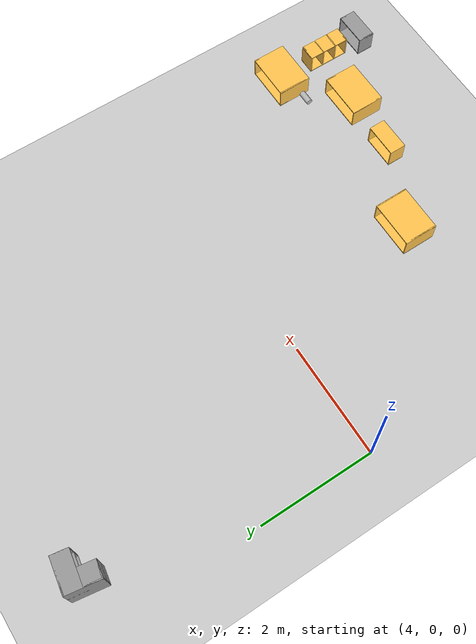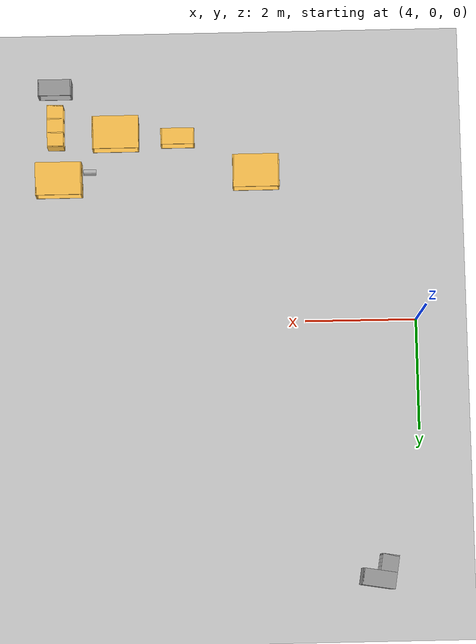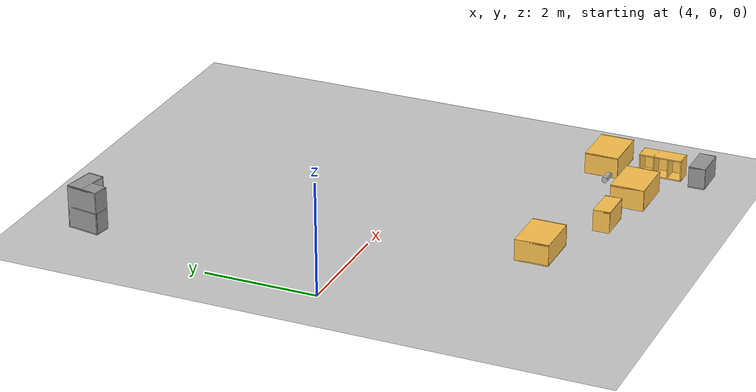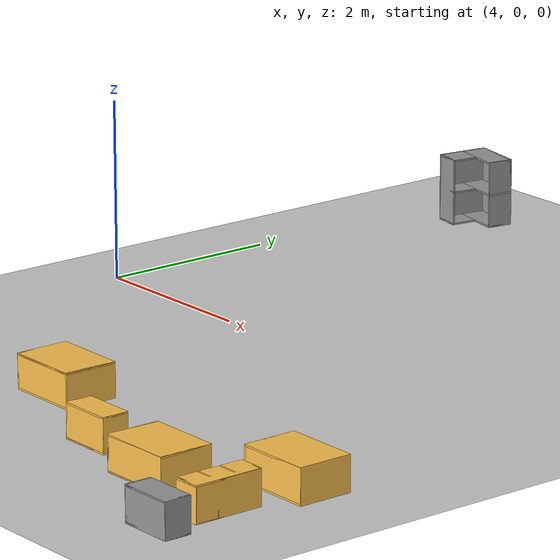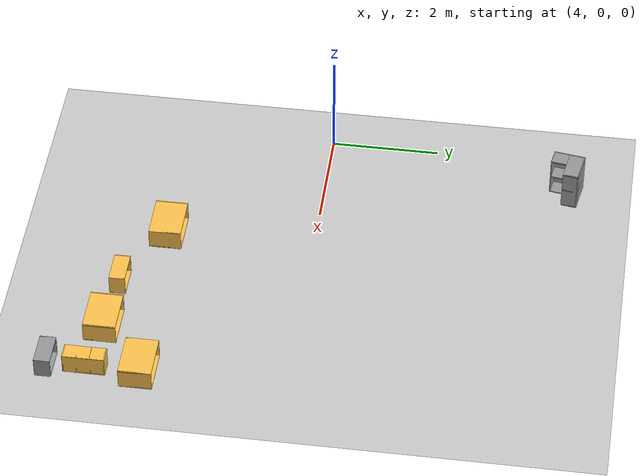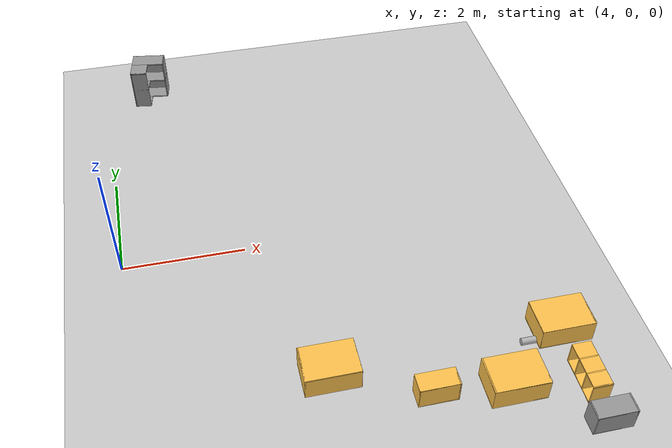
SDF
<sdf version="1.7">
 <world name="default">
  <model name="ground_plane">
   <static>1</static>
   <link name="link">
    <collision name="collision">
     <geometry><plane><normal>0 0 1</normal><size>100 100</size></plane></geometry>
     <surface>
      <contact><collide_bitmask>65535</collide_bitmask></contact>
      <friction><ode><mu>100</mu><mu2>50</mu2></ode></friction>
     </surface>
    </collision>
    <visual name="visual">
     <cast_shadows>0</cast_shadows>
     <geometry><plane><normal>0 0 1</normal><size>100 100</size></plane></geometry>
     <material>
      <script><uri>file://media/materials/scripts/gazebo.material</uri><name>Gazebo/Grey</name></script>
     </material>
    </visual>
   </link>
  </model>
  <model name="beer">
   <link name="link">
    <pose>0 0 0.115 0 -0 0</pose>
    <inertial>
     <mass>0.39</mass>
     <inertia><ixx>0.00058</ixx><ixy>0</ixy><ixz>0</ixz><iyy>0.00058</iyy><iyz>0</iyz><izz>0.00019</izz></inertia>
    </inertial>
    <collision name="collision">
     <geometry><cylinder><radius>0.055</radius><length>0.23</length></cylinder></geometry>
    </collision>
    <visual name="visual">
     <geometry><cylinder><radius>0.055</radius><length>0.23</length></cylinder></geometry>
     <material>
      <script>
       <uri>model://beer/materials/scripts</uri>
       <uri>model://beer/materials/textures</uri>
       <name>Beer/Diffuse</name>
      </script>
     </material>
    </visual>
   </link>
   <pose>9.74094 -2.80996 0.054918 1.56964 1.25964 1.56969</pose>
  </model>
  <model name="Fridge_Cabinet_33x15">
   <link name="Wall_17">
    <pose>0 0 0.01 0 -0 0</pose>
    <inertial>
     <mass>4.8627</mass>
     <inertia><ixx>0.146</ixx><iyy>0.4318</iyy><izz>0.2861</izz><ixy>0</ixy><ixz>0</ixz><iyz>0</iyz></inertia>
    </inertial>
    <collision name="Wall_17_Collision"><geometry><box><size>0.84 0.6 0.02</size></box></geometry></collision>
    <visual name="Wall_17_Visual">
     <geometry><box><size>0.84 0.6 0.02</size></box></geometry>
     <material>
      <script><uri>file://media/materials/scripts/gazebo.material</uri><name>Gazebo/Grey</name></script>
      <ambient>1 0.764706 0.305882 1</ambient>
     </material>
    </visual>
   </link>
   <joint name="17_21" type="fixed">
    <pose>0.42 0 0 0 -0 0</pose>
    <parent>Wall_21</parent>
    <child>Wall_17</child>
    <axis><xyz>1 0 0</xyz><limit><lower>-1e+16</lower><upper>1e+16</upper></limit></axis>
   </joint>
   <joint name="17_19" type="fixed">
    <pose>-0.42 0 0 0 -0 0</pose>
    <parent>Wall_19</parent>
    <child>Wall_17</child>
    <axis><xyz>1 0 0</xyz><limit><lower>-1e+16</lower><upper>1e+16</upper></limit></axis>
   </joint>
   <joint name="17_25" type="fixed">
    <pose>0 -0.3 0 0 -0 0</pose>
    <parent>Wall_25</parent>
    <child>Wall_17</child>
    <axis><xyz>0 1 0</xyz><limit><lower>-1e+16</lower><upper>1e+16</upper></limit></axis>
   </joint>
   <link name="Wall_19">
    <pose>-0.41 0 0.192 0 -0 0</pose>
    <inertial>
     <mass>2.223</mass>
     <inertia><ixx>0.0668</ixx><iyy>0.094</iyy><izz>0.0274</izz><ixy>0</ixy><ixz>0</ixz><iyz>0</iyz></inertia>
    </inertial>
    <collision name="Wall_19_Collision"><geometry><box><size>0.02 0.6 0.384</size></box></geometry></collision>
    <visual name="Wall_19_Visual">
     <geometry><box><size>0.02 0.6 0.384</size></box></geometry>
     <material>
      <script><uri>file://media/materials/scripts/gazebo.material</uri><name>Gazebo/Grey</name></script>
      <ambient>1 0.764706 0.305882 1</ambient>
     </material>
    </visual>
   </link>
   <link name="Wall_21">
    <pose>0.41 0 0.192 0 -0 0</pose>
    <inertial>
     <mass>2.223</mass>
     <inertia><ixx>0.0668</ixx><iyy>0.094</iyy><izz>0.0274</izz><ixy>0</ixy><ixz>0</ixz><iyz>0</iyz></inertia>
    </inertial>
    <collision name="Wall_21_Collision"><geometry><box><size>0.02 0.6 0.384</size></box></geometry></collision>
    <visual name="Wall_21_Visual">
     <geometry><box><size>0.02 0.6 0.384</size></box></geometry>
     <material>
      <script><uri>file://media/materials/scripts/gazebo.material</uri><name>Gazebo/Grey</name></script>
      <ambient>1 0.764706 0.305882 1</ambient>
     </material>
    </visual>
   </link>
   <link name="Wall_23">
    <pose>0 0 0.374 0 -0 0</pose>
    <inertial>
     <mass>4.8627</mass>
     <inertia><ixx>0.146</ixx><iyy>0.4318</iyy><izz>0.2861</izz><ixy>0</ixy><ixz>0</ixz><iyz>0</iyz></inertia>
    </inertial>
    <collision name="Wall_23_Collision"><geometry><box><size>0.84 0.6 0.02</size></box></geometry></collision>
    <visual name="Wall_23_Visual">
     <geometry><box><size>0.84 0.6 0.02</size></box></geometry>
     <material>
      <script><uri>file://media/materials/scripts/gazebo.material</uri><name>Gazebo/Grey</name></script>
      <ambient>1 0.764706 0.305882 1</ambient>
     </material>
    </visual>
   </link>
   <joint name="23_21" type="fixed">
    <pose>0.42 0 0 0 -0 0</pose>
    <parent>Wall_21</parent>
    <child>Wall_23</child>
    <axis><xyz>0 0 1</xyz><limit><lower>-1e+16</lower><upper>1e+16</upper></limit></axis>
   </joint>
   <joint name="23_19" type="fixed">
    <pose>-0.42 0 0 0 -0 0</pose>
    <parent>Wall_19</parent>
    <child>Wall_23</child>
    <axis><xyz>0 0 1</xyz><limit><lower>-1e+16</lower><upper>1e+16</upper></limit></axis>
   </joint>
   <joint name="23_25" type="fixed">
    <pose>0 -0.3 0 0 -0 0</pose>
    <parent>Wall_25</parent>
    <child>Wall_23</child>
    <axis><xyz>0 0 1</xyz><limit><lower>-1e+16</lower><upper>1e+16</upper></limit></axis>
   </joint>
   <link name="Wall_25">
    <pose>0 -0.29 0.19 0 -0 0</pose>
    <inertial>
     <mass>3.0651</mass>
     <inertia><ixx>0.037</ixx><iyy>0.1786</iyy><izz>0.2154</izz><ixy>0</ixy><ixz>0</ixz><iyz>0</iyz></inertia>
    </inertial>
    <collision name="Wall_25_Collision"><geometry><box><size>0.836 0.02 0.38</size></box></geometry></collision>
    <visual name="Wall_25_Visual">
     <geometry><box><size>0.836 0.02 0.38</size></box></geometry>
     <material>
      <script><uri>file://media/materials/scripts/gazebo.material</uri><name>Gazebo/Grey</name></script>
      <ambient>1 0.764706 0.305882 1</ambient>
     </material>
    </visual>
   </link>
   <joint name="25_21" type="fixed">
    <pose>0.42 0 0 0 -0 0</pose>
    <parent>Wall_21</parent>
    <child>Wall_25</child>
    <axis><xyz>0 1 0</xyz><limit><lower>-1e+16</lower><upper>1e+16</upper></limit></axis>
   </joint>
   <joint name="25_19" type="fixed">
    <pose>-0.42 0 0 0 -0 0</pose>
    <parent>Wall_19</parent>
    <child>Wall_25</child>
    <axis><xyz>0 1 0</xyz><limit><lower>-1e+16</lower><upper>1e+16</upper></limit></axis>
   </joint>
   <static>1</static>
   <pose>10.4095 -2.65103 0 0 -0 0</pose>
  </model>
  <model name="Fridge_Cabinet_33x15_0">
   <link name="Wall_17">
    <pose>0 0 0.01 0 -0 0</pose>
    <inertial>
     <mass>4.8627</mass>
     <inertia><ixx>0.146</ixx><iyy>0.4318</iyy><izz>0.2861</izz><ixy>0</ixy><ixz>0</ixz><iyz>0</iyz></inertia>
    </inertial>
    <collision name="Wall_17_Collision"><geometry><box><size>0.84 0.6 0.02</size></box></geometry></collision>
    <visual name="Wall_17_Visual">
     <geometry><box><size>0.84 0.6 0.02</size></box></geometry>
     <material>
      <script><uri>file://media/materials/scripts/gazebo.material</uri><name>Gazebo/Grey</name></script>
      <ambient>1 0.764706 0.305882 1</ambient>
     </material>
    </visual>
   </link>
   <joint name="17_21" type="fixed">
    <pose>0.42 0 0 0 -0 0</pose>
    <parent>Wall_21</parent>
    <child>Wall_17</child>
    <axis><xyz>1 0 0</xyz><limit><lower>-1e+16</lower><upper>1e+16</upper></limit></axis>
   </joint>
   <joint name="17_19" type="fixed">
    <pose>-0.42 0 0 0 -0 0</pose>
    <parent>Wall_19</parent>
    <child>Wall_17</child>
    <axis><xyz>1 0 0</xyz><limit><lower>-1e+16</lower><upper>1e+16</upper></limit></axis>
   </joint>
   <joint name="17_25" type="fixed">
    <pose>0 -0.3 0 0 -0 0</pose>
    <parent>Wall_25</parent>
    <child>Wall_17</child>
    <axis><xyz>0 1 0</xyz><limit><lower>-1e+16</lower><upper>1e+16</upper></limit></axis>
   </joint>
   <link name="Wall_19">
    <pose>-0.41 0 0.192 0 -0 0</pose>
    <inertial>
     <mass>2.223</mass>
     <inertia><ixx>0.0668</ixx><iyy>0.094</iyy><izz>0.0274</izz><ixy>0</ixy><ixz>0</ixz><iyz>0</iyz></inertia>
    </inertial>
    <collision name="Wall_19_Collision"><geometry><box><size>0.02 0.6 0.384</size></box></geometry></collision>
    <visual name="Wall_19_Visual">
     <geometry><box><size>0.02 0.6 0.384</size></box></geometry>
     <material>
      <script><uri>file://media/materials/scripts/gazebo.material</uri><name>Gazebo/Grey</name></script>
      <ambient>1 0.764706 0.305882 1</ambient>
     </material>
    </visual>
   </link>
   <link name="Wall_21">
    <pose>0.41 0 0.192 0 -0 0</pose>
    <inertial>
     <mass>2.223</mass>
     <inertia><ixx>0.0668</ixx><iyy>0.094</iyy><izz>0.0274</izz><ixy>0</ixy><ixz>0</ixz><iyz>0</iyz></inertia>
    </inertial>
    <collision name="Wall_21_Collision"><geometry><box><size>0.02 0.6 0.384</size></box></geometry></collision>
    <visual name="Wall_21_Visual">
     <geometry><box><size>0.02 0.6 0.384</size></box></geometry>
     <material>
      <script><uri>file://media/materials/scripts/gazebo.material</uri><name>Gazebo/Grey</name></script>
      <ambient>1 0.764706 0.305882 1</ambient>
     </material>
    </visual>
   </link>
   <link name="Wall_23">
    <pose>0 0 0.374 0 -0 0</pose>
    <inertial>
     <mass>4.8627</mass>
     <inertia><ixx>0.146</ixx><iyy>0.4318</iyy><izz>0.2861</izz><ixy>0</ixy><ixz>0</ixz><iyz>0</iyz></inertia>
    </inertial>
    <collision name="Wall_23_Collision"><geometry><box><size>0.84 0.6 0.02</size></box></geometry></collision>
    <visual name="Wall_23_Visual">
     <geometry><box><size>0.84 0.6 0.02</size></box></geometry>
     <material>
      <script><uri>file://media/materials/scripts/gazebo.material</uri><name>Gazebo/Grey</name></script>
      <ambient>1 0.764706 0.305882 1</ambient>
     </material>
    </visual>
   </link>
   <joint name="23_21" type="fixed">
    <pose>0.42 0 0 0 -0 0</pose>
    <parent>Wall_21</parent>
    <child>Wall_23</child>
    <axis><xyz>0 0 1</xyz><limit><lower>-1e+16</lower><upper>1e+16</upper></limit></axis>
   </joint>
   <joint name="23_19" type="fixed">
    <pose>-0.42 0 0 0 -0 0</pose>
    <parent>Wall_19</parent>
    <child>Wall_23</child>
    <axis><xyz>0 0 1</xyz><limit><lower>-1e+16</lower><upper>1e+16</upper></limit></axis>
   </joint>
   <joint name="23_25" type="fixed">
    <pose>0 -0.3 0 0 -0 0</pose>
    <parent>Wall_25</parent>
    <child>Wall_23</child>
    <axis><xyz>0 0 1</xyz><limit><lower>-1e+16</lower><upper>1e+16</upper></limit></axis>
   </joint>
   <link name="Wall_25">
    <pose>0 -0.29 0.19 0 -0 0</pose>
    <inertial>
     <mass>3.0651</mass>
     <inertia><ixx>0.037</ixx><iyy>0.1786</iyy><izz>0.2154</izz><ixy>0</ixy><ixz>0</ixz><iyz>0</iyz></inertia>
    </inertial>
    <collision name="Wall_25_Collision"><geometry><box><size>0.836 0.02 0.38</size></box></geometry></collision>
    <visual name="Wall_25_Visual">
     <geometry><box><size>0.836 0.02 0.38</size></box></geometry>
     <material>
      <script><uri>file://media/materials/scripts/gazebo.material</uri><name>Gazebo/Grey</name></script>
      <ambient>1 0.764706 0.305882 1</ambient>
     </material>
    </visual>
   </link>
   <joint name="25_21" type="fixed">
    <pose>0.42 0 0 0 -0 0</pose>
    <parent>Wall_21</parent>
    <child>Wall_25</child>
    <axis><xyz>0 1 0</xyz><limit><lower>-1e+16</lower><upper>1e+16</upper></limit></axis>
   </joint>
   <joint name="25_19" type="fixed">
    <pose>-0.42 0 0 0 -0 0</pose>
    <parent>Wall_19</parent>
    <child>Wall_25</child>
    <axis><xyz>0 1 0</xyz><limit><lower>-1e+16</lower><upper>1e+16</upper></limit></axis>
   </joint>
   <static>1</static>
   <pose>9.3713 -3.48461 0 0 -0 0</pose>
  </model>
  <model name="Fridge_Cabinet_33x15_1">
   <link name="Wall_17">
    <pose>0 0 0.01 0 -0 0</pose>
    <inertial>
     <mass>4.8627</mass>
     <inertia><ixx>0.146</ixx><iyy>0.4318</iyy><izz>0.2861</izz><ixy>0</ixy><ixz>0</ixz><iyz>0</iyz></inertia>
    </inertial>
    <collision name="Wall_17_Collision"><geometry><box><size>0.84 0.6 0.02</size></box></geometry></collision>
    <visual name="Wall_17_Visual">
     <geometry><box><size>0.84 0.6 0.02</size></box></geometry>
     <material>
      <script><uri>file://media/materials/scripts/gazebo.material</uri><name>Gazebo/Grey</name></script>
      <ambient>1 0.764706 0.305882 1</ambient>
     </material>
    </visual>
   </link>
   <joint name="17_21" type="fixed">
    <pose>0.42 0 0 0 -0 0</pose>
    <parent>Wall_21</parent>
    <child>Wall_17</child>
    <axis><xyz>1 0 0</xyz><limit><lower>-1e+16</lower><upper>1e+16</upper></limit></axis>
   </joint>
   <joint name="17_19" type="fixed">
    <pose>-0.42 0 0 0 -0 0</pose>
    <parent>Wall_19</parent>
    <child>Wall_17</child>
    <axis><xyz>1 0 0</xyz><limit><lower>-1e+16</lower><upper>1e+16</upper></limit></axis>
   </joint>
   <joint name="17_25" type="fixed">
    <pose>0 -0.3 0 0 -0 0</pose>
    <parent>Wall_25</parent>
    <child>Wall_17</child>
    <axis><xyz>0 1 0</xyz><limit><lower>-1e+16</lower><upper>1e+16</upper></limit></axis>
   </joint>
   <link name="Wall_19">
    <pose>-0.41 0 0.192 0 -0 0</pose>
    <inertial>
     <mass>2.223</mass>
     <inertia><ixx>0.0668</ixx><iyy>0.094</iyy><izz>0.0274</izz><ixy>0</ixy><ixz>0</ixz><iyz>0</iyz></inertia>
    </inertial>
    <collision name="Wall_19_Collision"><geometry><box><size>0.02 0.6 0.384</size></box></geometry></collision>
    <visual name="Wall_19_Visual">
     <geometry><box><size>0.02 0.6 0.384</size></box></geometry>
     <material>
      <script><uri>file://media/materials/scripts/gazebo.material</uri><name>Gazebo/Grey</name></script>
      <ambient>1 0.764706 0.305882 1</ambient>
     </material>
    </visual>
   </link>
   <link name="Wall_21">
    <pose>0.41 0 0.192 0 -0 0</pose>
    <inertial>
     <mass>2.223</mass>
     <inertia><ixx>0.0668</ixx><iyy>0.094</iyy><izz>0.0274</izz><ixy>0</ixy><ixz>0</ixz><iyz>0</iyz></inertia>
    </inertial>
    <collision name="Wall_21_Collision"><geometry><box><size>0.02 0.6 0.384</size></box></geometry></collision>
    <visual name="Wall_21_Visual">
     <geometry><box><size>0.02 0.6 0.384</size></box></geometry>
     <material>
      <script><uri>file://media/materials/scripts/gazebo.material</uri><name>Gazebo/Grey</name></script>
      <ambient>1 0.764706 0.305882 1</ambient>
     </material>
    </visual>
   </link>
   <link name="Wall_23">
    <pose>0 0 0.374 0 -0 0</pose>
    <inertial>
     <mass>4.8627</mass>
     <inertia><ixx>0.146</ixx><iyy>0.4318</iyy><izz>0.2861</izz><ixy>0</ixy><ixz>0</ixz><iyz>0</iyz></inertia>
    </inertial>
    <collision name="Wall_23_Collision"><geometry><box><size>0.84 0.6 0.02</size></box></geometry></collision>
    <visual name="Wall_23_Visual">
     <geometry><box><size>0.84 0.6 0.02</size></box></geometry>
     <material>
      <script><uri>file://media/materials/scripts/gazebo.material</uri><name>Gazebo/Grey</name></script>
      <ambient>1 0.764706 0.305882 1</ambient>
     </material>
    </visual>
   </link>
   <joint name="23_21" type="fixed">
    <pose>0.42 0 0 0 -0 0</pose>
    <parent>Wall_21</parent>
    <child>Wall_23</child>
    <axis><xyz>0 0 1</xyz><limit><lower>-1e+16</lower><upper>1e+16</upper></limit></axis>
   </joint>
   <joint name="23_19" type="fixed">
    <pose>-0.42 0 0 0 -0 0</pose>
    <parent>Wall_19</parent>
    <child>Wall_23</child>
    <axis><xyz>0 0 1</xyz><limit><lower>-1e+16</lower><upper>1e+16</upper></limit></axis>
   </joint>
   <joint name="23_25" type="fixed">
    <pose>0 -0.3 0 0 -0 0</pose>
    <parent>Wall_25</parent>
    <child>Wall_23</child>
    <axis><xyz>0 0 1</xyz><limit><lower>-1e+16</lower><upper>1e+16</upper></limit></axis>
   </joint>
   <link name="Wall_25">
    <pose>0 -0.29 0.19 0 -0 0</pose>
    <inertial>
     <mass>3.0651</mass>
     <inertia><ixx>0.037</ixx><iyy>0.1786</iyy><izz>0.2154</izz><ixy>0</ixy><ixz>0</ixz><iyz>0</iyz></inertia>
    </inertial>
    <collision name="Wall_25_Collision"><geometry><box><size>0.836 0.02 0.38</size></box></geometry></collision>
    <visual name="Wall_25_Visual">
     <geometry><box><size>0.836 0.02 0.38</size></box></geometry>
     <material>
      <script><uri>file://media/materials/scripts/gazebo.material</uri><name>Gazebo/Grey</name></script>
      <ambient>1 0.764706 0.305882 1</ambient>
     </material>
    </visual>
   </link>
   <joint name="25_21" type="fixed">
    <pose>0.42 0 0 0 -0 0</pose>
    <parent>Wall_21</parent>
    <child>Wall_25</child>
    <axis><xyz>0 1 0</xyz><limit><lower>-1e+16</lower><upper>1e+16</upper></limit></axis>
   </joint>
   <joint name="25_19" type="fixed">
    <pose>-0.42 0 0 0 -0 0</pose>
    <parent>Wall_19</parent>
    <child>Wall_25</child>
    <axis><xyz>0 1 0</xyz><limit><lower>-1e+16</lower><upper>1e+16</upper></limit></axis>
   </joint>
   <static>1</static>
   <pose>6.83788 -2.73111 0 0 -0 0</pose>
  </model>
  <model name="Wall_Cabinet_15x30">
   <pose>10.4574 -3.61598 0 0 -0 0</pose>
   <link name="Wall_0">
    <pose>0 0.374 0.192 0 -0 0</pose>
    <inertial>
     <mass>0.9882</mass>
     <inertia><ixx>0.0072</ixx><iyy>0.0194</iyy><izz>0.0122</izz><ixy>0</ixy><ixz>0</ixz><iyz>0</iyz></inertia>
    </inertial>
    <collision name="Wall_0_Collision"><geometry><box><size>0.296 0.02 0.384</size></box></geometry></collision>
    <visual name="Wall_0_Visual">
     <geometry><box><size>0.296 0.02 0.384</size></box></geometry>
     <material>
      <script><uri>file://media/materials/scripts/gazebo.material</uri><name>Gazebo/Grey</name></script>
      <ambient>1 0.764706 0.305882 1</ambient>
     </material>
    </visual>
   </link>
   <joint name="0_2" type="fixed">
    <pose>0 0 0.192 0 -0 0</pose>
    <parent>Wall_2</parent>
    <child>Wall_0</child>
    <axis><xyz>0 0 1</xyz><limit><lower>-1e+16</lower><upper>1e+16</upper></limit></axis>
   </joint>
   <joint name="0_4" type="fixed">
    <pose>0 0 -0.192 0 -0 0</pose>
    <parent>Wall_4</parent>
    <child>Wall_0</child>
    <axis><xyz>0 0 1</xyz><limit><lower>-1e+16</lower><upper>1e+16</upper></limit></axis>
   </joint>
   <joint name="0_15" type="fixed">
    <pose>0.148 0 0 0 -0 0</pose>
    <parent>Wall_15</parent>
    <child>Wall_0</child>
    <axis><xyz>1 0 0</xyz><limit><lower>-1e+16</lower><upper>1e+16</upper></limit></axis>
   </joint>
   <link name="Wall_11">
    <pose>0 -0.132768 0.192 0 -0 0</pose>
    <inertial>
     <mass>0.9882</mass>
     <inertia><ixx>0.0072</ixx><iyy>0.0194</iyy><izz>0.0122</izz><ixy>0</ixy><ixz>0</ixz><iyz>0</iyz></inertia>
    </inertial>
    <collision name="Wall_11_Collision"><geometry><box><size>0.296 0.02 0.384</size></box></geometry></collision>
    <visual name="Wall_11_Visual">
     <geometry><box><size>0.296 0.02 0.384</size></box></geometry>
     <material>
      <script><uri>file://media/materials/scripts/gazebo.material</uri><name>Gazebo/Grey</name></script>
      <ambient>1 0.764706 0.305882 1</ambient>
     </material>
    </visual>
   </link>
   <joint name="11_2" type="fixed">
    <pose>0 0 0.192 0 -0 0</pose>
    <parent>Wall_2</parent>
    <child>Wall_11</child>
    <axis><xyz>0 0 1</xyz><limit><lower>-1e+16</lower><upper>1e+16</upper></limit></axis>
   </joint>
   <joint name="11_4" type="fixed">
    <pose>0 0 -0.192 0 -0 0</pose>
    <parent>Wall_4</parent>
    <child>Wall_11</child>
    <axis><xyz>0 0 1</xyz><limit><lower>-1e+16</lower><upper>1e+16</upper></limit></axis>
   </joint>
   <joint name="11_15" type="fixed">
    <pose>0.148 0 0 0 -0 0</pose>
    <parent>Wall_15</parent>
    <child>Wall_11</child>
    <axis><xyz>1 0 0</xyz><limit><lower>-1e+16</lower><upper>1e+16</upper></limit></axis>
   </joint>
   <link name="Wall_15">
    <pose>0.138 0 0.19 0 -0 0</pose>
    <inertial>
     <mass>2.5241</mass>
     <inertia><ixx>0.0305</ixx><iyy>0.1229</iyy><izz>0.1532</izz><ixy>0</ixy><ixz>0</ixz><iyz>0</iyz></inertia>
    </inertial>
    <collision name="Wall_15_Collision"><geometry><box><size>0.02 0.764 0.38</size></box></geometry></collision>
    <visual name="Wall_15_Visual">
     <geometry><box><size>0.02 0.764 0.38</size></box></geometry>
     <material>
      <script><uri>file://media/materials/scripts/gazebo.material</uri><name>Gazebo/Grey</name></script>
      <ambient>1 0.764706 0.305882 1</ambient>
     </material>
    </visual>
   </link>
   <joint name="15_2" type="fixed">
    <pose>0 0 0.19 0 -0 0</pose>
    <parent>Wall_2</parent>
    <child>Wall_15</child>
    <axis><xyz>0 0 1</xyz><limit><lower>-1e+16</lower><upper>1e+16</upper></limit></axis>
   </joint>
   <joint name="15_4" type="fixed">
    <pose>0 0 -0.19 0 -0 0</pose>
    <parent>Wall_4</parent>
    <child>Wall_15</child>
    <axis><xyz>0 0 1</xyz><limit><lower>-1e+16</lower><upper>1e+16</upper></limit></axis>
   </joint>
   <link name="Wall_2">
    <pose>0 0 0.374 0 -0 0</pose>
    <inertial>
     <mass>1.9765</mass>
     <inertia><ixx>0.0145</ixx><iyy>0.1116</iyy><izz>0.0972</izz><ixy>0</ixy><ixz>0</ixz><iyz>0</iyz></inertia>
    </inertial>
    <collision name="Wall_2_Collision"><geometry><box><size>0.296 0.768 0.02</size></box></geometry></collision>
    <visual name="Wall_2_Visual">
     <geometry><box><size>0.296 0.768 0.02</size></box></geometry>
     <material>
      <script><uri>file://media/materials/scripts/gazebo.material</uri><name>Gazebo/Grey</name></script>
      <ambient>1 0.764706 0.305882 1</ambient>
     </material>
    </visual>
   </link>
   <link name="Wall_4">
    <pose>0 0 0.01 0 -0 0</pose>
    <inertial>
     <mass>1.9765</mass>
     <inertia><ixx>0.0145</ixx><iyy>0.1116</iyy><izz>0.0972</izz><ixy>0</ixy><ixz>0</ixz><iyz>0</iyz></inertia>
    </inertial>
    <collision name="Wall_4_Collision"><geometry><box><size>0.296 0.768 0.02</size></box></geometry></collision>
    <visual name="Wall_4_Visual">
     <geometry><box><size>0.296 0.768 0.02</size></box></geometry>
     <material>
      <script><uri>file://media/materials/scripts/gazebo.material</uri><name>Gazebo/Grey</name></script>
      <ambient>1 0.764706 0.305882 1</ambient>
     </material>
    </visual>
    <pose>-0.181124 0 0 0 0 -1.5708</pose>
   </link>
   <link name="Wall_6">
    <pose>0 -0.374 0.192 0 -0 0</pose>
    <inertial>
     <mass>0.9882</mass>
     <inertia><ixx>0.0072</ixx><iyy>0.0194</iyy><izz>0.0122</izz><ixy>0</ixy><ixz>0</ixz><iyz>0</iyz></inertia>
    </inertial>
    <collision name="Wall_6_Collision"><geometry><box><size>0.296 0.02 0.384</size></box></geometry></collision>
    <visual name="Wall_6_Visual">
     <geometry><box><size>0.296 0.02 0.384</size></box></geometry>
     <material>
      <script><uri>file://media/materials/scripts/gazebo.material</uri><name>Gazebo/Grey</name></script>
      <ambient>1 0.764706 0.305882 1</ambient>
     </material>
    </visual>
   </link>
   <joint name="6_2" type="fixed">
    <pose>0 0 0.192 0 -0 0</pose>
    <parent>Wall_2</parent>
    <child>Wall_6</child>
    <axis><xyz>0 0 1</xyz><limit><lower>-1e+16</lower><upper>1e+16</upper></limit></axis>
   </joint>
   <joint name="6_4" type="fixed">
    <pose>0 0 -0.192 0 -0 0</pose>
    <parent>Wall_4</parent>
    <child>Wall_6</child>
    <axis><xyz>0 0 1</xyz><limit><lower>-1e+16</lower><upper>1e+16</upper></limit></axis>
   </joint>
   <joint name="6_15" type="fixed">
    <pose>0.148 0 0 0 -0 0</pose>
    <parent>Wall_15</parent>
    <child>Wall_6</child>
    <axis><xyz>1 0 0</xyz><limit><lower>-1e+16</lower><upper>1e+16</upper></limit></axis>
   </joint>
   <link name="Wall_8">
    <pose>0 0.120833 0.192 0 -0 0</pose>
    <inertial>
     <mass>0.9882</mass>
     <inertia><ixx>0.0072</ixx><iyy>0.0194</iyy><izz>0.0122</izz><ixy>0</ixy><ixz>0</ixz><iyz>0</iyz></inertia>
    </inertial>
    <collision name="Wall_8_Collision"><geometry><box><size>0.296 0.02 0.384</size></box></geometry></collision>
    <visual name="Wall_8_Visual">
     <geometry><box><size>0.296 0.02 0.384</size></box></geometry>
     <material>
      <script><uri>file://media/materials/scripts/gazebo.material</uri><name>Gazebo/Grey</name></script>
      <ambient>1 0.764706 0.305882 1</ambient>
     </material>
    </visual>
   </link>
   <joint name="8_2" type="fixed">
    <pose>0 0 0.192 0 -0 0</pose>
    <parent>Wall_2</parent>
    <child>Wall_8</child>
    <axis><xyz>0 0 1</xyz><limit><lower>-1e+16</lower><upper>1e+16</upper></limit></axis>
   </joint>
   <joint name="8_4" type="fixed">
    <pose>0 0 -0.192 0 -0 0</pose>
    <parent>Wall_4</parent>
    <child>Wall_8</child>
    <axis><xyz>0 0 1</xyz><limit><lower>-1e+16</lower><upper>1e+16</upper></limit></axis>
   </joint>
   <joint name="8_15" type="fixed">
    <pose>0.148 0 0 0 -0 0</pose>
    <parent>Wall_15</parent>
    <child>Wall_8</child>
    <axis><xyz>1 0 0</xyz><limit><lower>-1e+16</lower><upper>1e+16</upper></limit></axis>
   </joint>
   <static>1</static>
  </model>
  <model name="Wall_Cabinet_24x15M">
   <link name="Wall_41">
    <pose>0 0 0.01 0 -0 0</pose>
    <inertial>
     <mass>1.4983</mass>
     <inertia><ixx>0.011</ixx><iyy>0.0571</iyy><izz>0.0462</izz><ixy>0</ixy><ixz>0</ixz><iyz>0</iyz></inertia>
    </inertial>
    <collision name="Wall_41_Collision"><geometry><box><size>0.608 0.296 0.02</size></box></geometry></collision>
    <visual name="Wall_41_Visual">
     <geometry><box><size>0.608 0.296 0.02</size></box></geometry>
     <material>
      <script><uri>file://media/materials/scripts/gazebo.material</uri><name>Gazebo/Grey</name></script>
      <ambient>1 0.764706 0.305882 1</ambient>
     </material>
    </visual>
    <pose>0.000184 0.181953 0 0 -0 0</pose>
   </link>
   <joint name="41_43" type="fixed">
    <pose>-0.304 0 0 0 -0 0</pose>
    <parent>Wall_43</parent>
    <child>Wall_41</child>
    <axis><xyz>0 0 1</xyz><limit><lower>-1e+16</lower><upper>1e+16</upper></limit></axis>
   </joint>
   <joint name="41_45" type="fixed">
    <pose>0.304 0 0 0 -0 0</pose>
    <parent>Wall_45</parent>
    <child>Wall_41</child>
    <axis><xyz>0 0 1</xyz><limit><lower>-1e+16</lower><upper>1e+16</upper></limit></axis>
   </joint>
   <joint name="41_49" type="fixed">
    <pose>0 -0.148 0 0 -0 0</pose>
    <parent>Wall_49</parent>
    <child>Wall_41</child>
    <axis><xyz>0 0 1</xyz><limit><lower>-1e+16</lower><upper>1e+16</upper></limit></axis>
   </joint>
   <link name="Wall_43">
    <pose>-0.294 0 0.192 0 -0 0</pose>
    <inertial>
     <mass>0.9463</mass>
     <inertia><ixx>0.0069</ixx><iyy>0.0185</iyy><izz>0.0117</izz><ixy>0</ixy><ixz>0</ixz><iyz>0</iyz></inertia>
    </inertial>
    <collision name="Wall_43_Collision"><geometry><box><size>0.02 0.296 0.384</size></box></geometry></collision>
    <visual name="Wall_43_Visual">
     <geometry><box><size>0.02 0.296 0.384</size></box></geometry>
     <material>
      <script><uri>file://media/materials/scripts/gazebo.material</uri><name>Gazebo/Grey</name></script>
      <ambient>1 0.764706 0.305882 1</ambient>
     </material>
    </visual>
   </link>
   <link name="Wall_45">
    <pose>0.294 0 0.192 0 -0 0</pose>
    <inertial>
     <mass>0.9463</mass>
     <inertia><ixx>0.0069</ixx><iyy>0.0185</iyy><izz>0.0117</izz><ixy>0</ixy><ixz>0</ixz><iyz>0</iyz></inertia>
    </inertial>
    <collision name="Wall_45_Collision"><geometry><box><size>0.02 0.296 0.384</size></box></geometry></collision>
    <visual name="Wall_45_Visual">
     <geometry><box><size>0.02 0.296 0.384</size></box></geometry>
     <material>
      <script><uri>file://media/materials/scripts/gazebo.material</uri><name>Gazebo/Grey</name></script>
      <ambient>1 0.764706 0.305882 1</ambient>
     </material>
    </visual>
   </link>
   <link name="Wall_47">
    <pose>0 0 0.374 0 -0 0</pose>
    <inertial>
     <mass>1.4983</mass>
     <inertia><ixx>0.011</ixx><iyy>0.0571</iyy><izz>0.0462</izz><ixy>0</ixy><ixz>0</ixz><iyz>0</iyz></inertia>
    </inertial>
    <collision name="Wall_47_Collision"><geometry><box><size>0.608 0.296 0.02</size></box></geometry></collision>
    <visual name="Wall_47_Visual">
     <geometry><box><size>0.608 0.296 0.02</size></box></geometry>
     <material>
      <script><uri>file://media/materials/scripts/gazebo.material</uri><name>Gazebo/Grey</name></script>
      <ambient>1 0.764706 0.305882 1</ambient>
     </material>
    </visual>
   </link>
   <joint name="47_43" type="fixed">
    <pose>-0.304 0 0 0 -0 0</pose>
    <parent>Wall_43</parent>
    <child>Wall_47</child>
    <axis><xyz>0 0 1</xyz><limit><lower>-1e+16</lower><upper>1e+16</upper></limit></axis>
   </joint>
   <joint name="47_45" type="fixed">
    <pose>0.304 0 0 0 -0 0</pose>
    <parent>Wall_45</parent>
    <child>Wall_47</child>
    <axis><xyz>0 0 1</xyz><limit><lower>-1e+16</lower><upper>1e+16</upper></limit></axis>
   </joint>
   <joint name="47_49" type="fixed">
    <pose>0 -0.148 0 0 -0 0</pose>
    <parent>Wall_49</parent>
    <child>Wall_47</child>
    <axis><xyz>0 0 1</xyz><limit><lower>-1e+16</lower><upper>1e+16</upper></limit></axis>
   </joint>
   <link name="Wall_49">
    <pose>0 -0.138 0.19 0 -0 0</pose>
    <inertial>
     <mass>1.9108</mass>
     <inertia><ixx>0.0231</ixx><iyy>0.0582</iyy><izz>0.0811</izz><ixy>0</ixy><ixz>0</ixz><iyz>0</iyz></inertia>
    </inertial>
    <collision name="Wall_49_Collision"><geometry><box><size>0.604 0.02 0.38</size></box></geometry></collision>
    <visual name="Wall_49_Visual">
     <geometry><box><size>0.604 0.02 0.38</size></box></geometry>
     <material>
      <script><uri>file://media/materials/scripts/gazebo.material</uri><name>Gazebo/Grey</name></script>
      <ambient>1 0.764706 0.305882 1</ambient>
     </material>
    </visual>
   </link>
   <joint name="49_43" type="fixed">
    <pose>-0.302 0 0 0 -0 0</pose>
    <parent>Wall_41</parent>
    <child>Wall_49</child>
    <axis><xyz>0 1 0</xyz><limit><lower>-1e+16</lower><upper>1e+16</upper></limit></axis>
   </joint>
   <joint name="49_45" type="fixed">
    <pose>0.302 0 0 0 -0 0</pose>
    <parent>Wall_45</parent>
    <child>Wall_49</child>
    <axis><xyz>0 1 0</xyz><limit><lower>-1e+16</lower><upper>1e+16</upper></limit></axis>
   </joint>
   <static>1</static>
   <pose>8.24721 -3.38783 0 0 -0 0</pose>
  </model>
  <model name="Wall_Cabinet_24x15W">
   <link name="Wall_41">
    <pose>0 0 0.01 0 -0 0</pose>
    <inertial>
     <mass>1.4983</mass>
     <inertia><ixx>0.011</ixx><iyy>0.0571</iyy><izz>0.0462</izz><ixy>0</ixy><ixz>0</ixz><iyz>0</iyz></inertia>
    </inertial>
    <collision name="Wall_41_Collision"><geometry><box><size>0.608 0.296 0.02</size></box></geometry></collision>
    <visual name="Wall_41_Visual">
     <geometry><box><size>0.608 0.296 0.02</size></box></geometry>
     <material>
      <script><uri>file://media/materials/scripts/gazebo.material</uri><name>Gazebo/Grey</name></script>
      <ambient>1 1 1 1</ambient>
     </material>
    </visual>
    <pose>0.000184 0.181953 0 0 -0 0</pose>
   </link>
   <joint name="41_43" type="fixed">
    <pose>-0.304 0 0 0 -0 0</pose>
    <parent>Wall_43</parent>
    <child>Wall_41</child>
    <axis><xyz>0 0 1</xyz><limit><lower>-1e+16</lower><upper>1e+16</upper></limit></axis>
   </joint>
   <joint name="41_45" type="fixed">
    <pose>0.304 0 0 0 -0 0</pose>
    <parent>Wall_45</parent>
    <child>Wall_41</child>
    <axis><xyz>0 0 1</xyz><limit><lower>-1e+16</lower><upper>1e+16</upper></limit></axis>
   </joint>
   <joint name="41_49" type="fixed">
    <pose>0 -0.148 0 0 -0 0</pose>
    <parent>Wall_49</parent>
    <child>Wall_41</child>
    <axis><xyz>0 0 1</xyz><limit><lower>-1e+16</lower><upper>1e+16</upper></limit></axis>
   </joint>
   <link name="Wall_43">
    <pose>-0.294 0 0.192 0 -0 0</pose>
    <inertial>
     <mass>0.9463</mass>
     <inertia><ixx>0.0069</ixx><iyy>0.0185</iyy><izz>0.0117</izz><ixy>0</ixy><ixz>0</ixz><iyz>0</iyz></inertia>
    </inertial>
    <collision name="Wall_43_Collision"><geometry><box><size>0.02 0.296 0.384</size></box></geometry></collision>
    <visual name="Wall_43_Visual">
     <geometry><box><size>0.02 0.296 0.384</size></box></geometry>
     <material>
      <script><uri>file://media/materials/scripts/gazebo.material</uri><name>Gazebo/Grey</name></script>
      <ambient>1 1 1 1</ambient>
     </material>
    </visual>
   </link>
   <link name="Wall_45">
    <pose>0.294 0 0.192 0 -0 0</pose>
    <inertial>
     <mass>0.9463</mass>
     <inertia><ixx>0.0069</ixx><iyy>0.0185</iyy><izz>0.0117</izz><ixy>0</ixy><ixz>0</ixz><iyz>0</iyz></inertia>
    </inertial>
    <collision name="Wall_45_Collision"><geometry><box><size>0.02 0.296 0.384</size></box></geometry></collision>
    <visual name="Wall_45_Visual">
     <geometry><box><size>0.02 0.296 0.384</size></box></geometry>
     <material>
      <script><uri>file://media/materials/scripts/gazebo.material</uri><name>Gazebo/Grey</name></script>
      <ambient>1 1 1 1</ambient>
     </material>
    </visual>
   </link>
   <link name="Wall_47">
    <pose>0 0 0.374 0 -0 0</pose>
    <inertial>
     <mass>1.4983</mass>
     <inertia><ixx>0.011</ixx><iyy>0.0571</iyy><izz>0.0462</izz><ixy>0</ixy><ixz>0</ixz><iyz>0</iyz></inertia>
    </inertial>
    <collision name="Wall_47_Collision"><geometry><box><size>0.608 0.296 0.02</size></box></geometry></collision>
    <visual name="Wall_47_Visual">
     <geometry><box><size>0.608 0.296 0.02</size></box></geometry>
     <material>
      <script><uri>file://media/materials/scripts/gazebo.material</uri><name>Gazebo/Grey</name></script>
      <ambient>1 1 1 1</ambient>
     </material>
    </visual>
   </link>
   <joint name="47_43" type="fixed">
    <pose>-0.304 0 0 0 -0 0</pose>
    <parent>Wall_43</parent>
    <child>Wall_47</child>
    <axis><xyz>0 0 1</xyz><limit><lower>-1e+16</lower><upper>1e+16</upper></limit></axis>
   </joint>
   <joint name="47_45" type="fixed">
    <pose>0.304 0 0 0 -0 0</pose>
    <parent>Wall_45</parent>
    <child>Wall_47</child>
    <axis><xyz>0 0 1</xyz><limit><lower>-1e+16</lower><upper>1e+16</upper></limit></axis>
   </joint>
   <joint name="47_49" type="fixed">
    <pose>0 -0.148 0 0 -0 0</pose>
    <parent>Wall_49</parent>
    <child>Wall_47</child>
    <axis><xyz>0 0 1</xyz><limit><lower>-1e+16</lower><upper>1e+16</upper></limit></axis>
   </joint>
   <link name="Wall_49">
    <pose>0 -0.138 0.19 0 -0 0</pose>
    <inertial>
     <mass>1.9108</mass>
     <inertia><ixx>0.0231</ixx><iyy>0.0582</iyy><izz>0.0811</izz><ixy>0</ixy><ixz>0</ixz><iyz>0</iyz></inertia>
    </inertial>
    <collision name="Wall_49_Collision"><geometry><box><size>0.604 0.02 0.38</size></box></geometry></collision>
    <visual name="Wall_49_Visual">
     <geometry><box><size>0.604 0.02 0.38</size></box></geometry>
     <material>
      <script><uri>file://media/materials/scripts/gazebo.material</uri><name>Gazebo/Grey</name></script>
      <ambient>1 1 1 1</ambient>
     </material>
    </visual>
   </link>
   <joint name="49_43" type="fixed">
    <pose>-0.302 0 0 0 -0 0</pose>
    <parent>Wall_41</parent>
    <child>Wall_49</child>
    <axis><xyz>0 1 0</xyz><limit><lower>-1e+16</lower><upper>1e+16</upper></limit></axis>
   </joint>
   <joint name="49_45" type="fixed">
    <pose>0.302 0 0 0 -0 0</pose>
    <parent>Wall_45</parent>
    <child>Wall_49</child>
    <axis><xyz>0 1 0</xyz><limit><lower>-1e+16</lower><upper>1e+16</upper></limit></axis>
   </joint>
   <static>1</static>
   <pose>10.4621 -4.32753 0 0 -0 0</pose>
  </model>
  <model name="Wall_Cabinet_Coin_24x30W">
   <link name="Wall_10">
    <pose>0.286 -0.148 0.384 0 -0 0</pose>
    <inertial>
     <mass>2.1259</mass>
     <inertia><ixx>0.0158</ixx><iyy>0.1202</iyy><izz>0.1046</izz><ixy>0</ixy><ixz>0</ixz><iyz>0</iyz></inertia>
    </inertial>
    <collision name="Wall_10_Collision"><geometry><box><size>0.02 0.296 0.768</size></box></geometry></collision>
    <visual name="Wall_10_Visual">
     <geometry><box><size>0.02 0.296 0.768</size></box></geometry>
     <material>
      <script><uri>file://media/materials/scripts/gazebo.material</uri><name>Gazebo/Grey</name></script>
      <ambient>1 1 1 1</ambient>
     </material>
    </visual>
   </link>
   <joint name="10_16" type="fixed">
    <pose>0 0 -0.374 0 -0 0</pose>
    <parent>Wall_16</parent>
    <child>Wall_10</child>
    <axis><xyz>1 0 0</xyz><limit><lower>-1e+16</lower><upper>1e+16</upper></limit></axis>
   </joint>
   <joint name="10_14" type="fixed">
    <parent>Wall_14</parent>
    <child>Wall_10</child>
    <axis><xyz>1 0 0</xyz><limit><lower>-1e+16</lower><upper>1e+16</upper></limit></axis>
   </joint>
   <joint name="10_12" type="fixed">
    <pose>0 0 0.374 0 -0 0</pose>
    <parent>Wall_12</parent>
    <child>Wall_10</child>
    <axis><xyz>1 0 0</xyz><limit><lower>-1e+16</lower><upper>1e+16</upper></limit></axis>
   </joint>
   <joint name="10_29" type="fixed">
    <pose>0 -0.148 0 0 -0 0</pose>
    <parent>Wall_29</parent>
    <child>Wall_10</child>
    <axis><xyz>1 0 0</xyz><limit><lower>-1e+16</lower><upper>1e+16</upper></limit></axis>
   </joint>
   <link name="Wall_12">
    <pose>0.148 -0.148 0.758 0 -0 0</pose>
    <inertial>
     <mass>0.8802</mass>
     <inertia><ixx>0.0065</ixx><iyy>0.0139</iyy><izz>0.0074</izz><ixy>0</ixy><ixz>0</ixz><iyz>0</iyz></inertia>
    </inertial>
    <collision name="Wall_12_Collision"><geometry><box><size>0.296 0.296 0.02</size></box></geometry></collision>
    <visual name="Wall_12_Visual">
     <geometry><box><size>0.296 0.296 0.02</size></box></geometry>
     <material>
      <script><uri>file://media/materials/scripts/gazebo.material</uri><name>Gazebo/Grey</name></script>
      <ambient>1 1 1 1</ambient>
     </material>
    </visual>
   </link>
   <joint name="12_29" type="fixed">
    <pose>0 -0.148 0 0 -0 0</pose>
    <parent>Wall_29</parent>
    <child>Wall_12</child>
    <axis><xyz>0 0 1</xyz><limit><lower>-1e+16</lower><upper>1e+16</upper></limit></axis>
   </joint>
   <link name="Wall_14">
    <pose>0.148 -0.148 0.384 0 -0 0</pose>
    <inertial>
     <mass>0.8802</mass>
     <inertia><ixx>0.0065</ixx><iyy>0.0139</iyy><izz>0.0074</izz><ixy>0</ixy><ixz>0</ixz><iyz>0</iyz></inertia>
    </inertial>
    <collision name="Wall_14_Collision"><geometry><box><size>0.296 0.296 0.02</size></box></geometry></collision>
    <visual name="Wall_14_Visual">
     <geometry><box><size>0.296 0.296 0.02</size></box></geometry>
     <material>
      <script><uri>file://media/materials/scripts/gazebo.material</uri><name>Gazebo/Grey</name></script>
      <ambient>1 1 1 1</ambient>
     </material>
    </visual>
   </link>
   <joint name="14_29" type="fixed">
    <pose>0 -0.148 0 0 -0 0</pose>
    <parent>Wall_29</parent>
    <child>Wall_14</child>
    <axis><xyz>0 1 0</xyz><limit><lower>-1e+16</lower><upper>1e+16</upper></limit></axis>
   </joint>
   <link name="Wall_16">
    <pose>0.148 -0.148 0.01 0 -0 0</pose>
    <inertial>
     <mass>0.8802</mass>
     <inertia><ixx>0.0065</ixx><iyy>0.0139</iyy><izz>0.0074</izz><ixy>0</ixy><ixz>0</ixz><iyz>0</iyz></inertia>
    </inertial>
    <collision name="Wall_16_Collision"><geometry><box><size>0.296 0.296 0.02</size></box></geometry></collision>
    <visual name="Wall_16_Visual">
     <geometry><box><size>0.296 0.296 0.02</size></box></geometry>
     <material>
      <script><uri>file://media/materials/scripts/gazebo.material</uri><name>Gazebo/Grey</name></script>
      <ambient>1 1 1 1</ambient>
     </material>
    </visual>
   </link>
   <joint name="16_29" type="fixed">
    <pose>0 -0.148 0 0 -0 0</pose>
    <parent>Wall_29</parent>
    <child>Wall_16</child>
    <axis><xyz>0 1 0</xyz><limit><lower>-1e+16</lower><upper>1e+16</upper></limit></axis>
   </joint>
   <link name="Wall_18">
    <pose>-0.148 0 0.01 0 -0 0</pose>
    <inertial>
     <mass>1.6525</mass>
     <inertia><ixx>0.0491</ixx><iyy>0.0613</iyy><izz>0.0123</izz><ixy>0</ixy><ixz>0</ixz><iyz>0</iyz></inertia>
    </inertial>
    <collision name="Wall_18_Collision"><geometry><box><size>0.296 0.592 0.02</size></box></geometry></collision>
    <visual name="Wall_18_Visual">
     <geometry><box><size>0.296 0.592 0.02</size></box></geometry>
     <material>
      <script><uri>file://media/materials/scripts/gazebo.material</uri><name>Gazebo/Grey</name></script>
      <ambient>1 1 1 1</ambient>
     </material>
    </visual>
   </link>
   <joint name="18_16" type="fixed">
    <pose>0.148 -0.148 0 0 -0 0</pose>
    <parent>Wall_16</parent>
    <child>Wall_18</child>
    <axis><xyz>1 0 0</xyz><limit><lower>-1e+16</lower><upper>1e+16</upper></limit></axis>
   </joint>
   <joint name="18_29" type="fixed">
    <pose>0 -0.296 0 0 -0 0</pose>
    <parent>Wall_29</parent>
    <child>Wall_18</child>
    <axis><xyz>0 1 0</xyz><limit><lower>-1e+16</lower><upper>1e+16</upper></limit></axis>
   </joint>
   <joint name="18_27" type="fixed">
    <pose>-0.148 0 0 0 -0 0</pose>
    <parent>Wall_27</parent>
    <child>Wall_18</child>
    <axis><xyz>1 0 0</xyz><limit><lower>-1e+16</lower><upper>1e+16</upper></limit></axis>
   </joint>
   <joint name="18_30" type="fixed">
    <pose>0 0.296 0 0 -0 0</pose>
    <parent>Wall_30</parent>
    <child>Wall_18</child>
    <axis><xyz>0 1 0</xyz><limit><lower>-1e+16</lower><upper>1e+16</upper></limit></axis>
   </joint>
   <link name="Wall_20">
    <pose>-0.148 0 0.384 0 -0 0</pose>
    <inertial>
     <mass>1.6525</mass>
     <inertia><ixx>0.0491</ixx><iyy>0.0613</iyy><izz>0.0123</izz><ixy>0</ixy><ixz>0</ixz><iyz>0</iyz></inertia>
    </inertial>
    <collision name="Wall_20_Collision"><geometry><box><size>0.296 0.592 0.02</size></box></geometry></collision>
    <visual name="Wall_20_Visual">
     <geometry><box><size>0.296 0.592 0.02</size></box></geometry>
     <material>
      <script><uri>file://media/materials/scripts/gazebo.material</uri><name>Gazebo/Grey</name></script>
      <ambient>1 1 1 1</ambient>
     </material>
    </visual>
   </link>
   <joint name="20_14" type="fixed">
    <pose>0.148 -0.148 0 0 -0 0</pose>
    <parent>Wall_14</parent>
    <child>Wall_20</child>
    <axis><xyz>1 0 0</xyz><limit><lower>-1e+16</lower><upper>1e+16</upper></limit></axis>
   </joint>
   <joint name="20_29" type="fixed">
    <pose>0 -0.296 0 0 -0 0</pose>
    <parent>Wall_29</parent>
    <child>Wall_20</child>
    <axis><xyz>0 1 0</xyz><limit><lower>-1e+16</lower><upper>1e+16</upper></limit></axis>
   </joint>
   <joint name="20_27" type="fixed">
    <pose>-0.148 0 0 0 -0 0</pose>
    <parent>Wall_27</parent>
    <child>Wall_20</child>
    <axis><xyz>1 0 0</xyz><limit><lower>-1e+16</lower><upper>1e+16</upper></limit></axis>
   </joint>
   <joint name="20_30" type="fixed">
    <pose>0 0.296 0 0 -0 0</pose>
    <parent>Wall_30</parent>
    <child>Wall_20</child>
    <axis><xyz>0 1 0</xyz><limit><lower>-1e+16</lower><upper>1e+16</upper></limit></axis>
   </joint>
   <link name="Wall_22">
    <pose>-0.148 0 0.758 0 -0 0</pose>
    <inertial>
     <mass>1.6525</mass>
     <inertia><ixx>0.0491</ixx><iyy>0.0613</iyy><izz>0.0123</izz><ixy>0</ixy><ixz>0</ixz><iyz>0</iyz></inertia>
    </inertial>
    <collision name="Wall_22_Collision"><geometry><box><size>0.296 0.592 0.02</size></box></geometry></collision>
    <visual name="Wall_22_Visual">
     <geometry><box><size>0.296 0.592 0.02</size></box></geometry>
     <material>
      <script><uri>file://media/materials/scripts/gazebo.material</uri><name>Gazebo/Grey</name></script>
      <ambient>1 1 1 1</ambient>
     </material>
    </visual>
   </link>
   <joint name="22_12" type="fixed">
    <pose>0.148 -0.148 0 0 -0 0</pose>
    <parent>Wall_12</parent>
    <child>Wall_22</child>
    <axis><xyz>1 0 0</xyz><limit><lower>-1e+16</lower><upper>1e+16</upper></limit></axis>
   </joint>
   <joint name="22_29" type="fixed">
    <pose>0 -0.296 0 0 -0 0</pose>
    <parent>Wall_29</parent>
    <child>Wall_22</child>
    <axis><xyz>0 1 0</xyz><limit><lower>-1e+16</lower><upper>1e+16</upper></limit></axis>
   </joint>
   <joint name="22_27" type="fixed">
    <pose>-0.148 0 0 0 -0 0</pose>
    <parent>Wall_27</parent>
    <child>Wall_22</child>
    <axis><xyz>1 0 0</xyz><limit><lower>-1e+16</lower><upper>1e+16</upper></limit></axis>
   </joint>
   <joint name="22_30" type="fixed">
    <pose>0 0.296 0 0 -0 0</pose>
    <parent>Wall_30</parent>
    <child>Wall_22</child>
    <axis><xyz>0 1 0</xyz><limit><lower>-1e+16</lower><upper>1e+16</upper></limit></axis>
   </joint>
   <link name="Wall_27">
    <pose>-0.286 0 0.384 0 -0 0</pose>
    <inertial>
     <mass>4.2589</mass>
     <inertia><ixx>0.1266</ixx><iyy>0.3358</iyy><izz>0.2095</izz><ixy>0</ixy><ixz>0</ixz><iyz>0</iyz></inertia>
    </inertial>
    <collision name="Wall_27_Collision"><geometry><box><size>0.02 0.592 0.768</size></box></geometry></collision>
    <visual name="Wall_27_Visual">
     <geometry><box><size>0.02 0.592 0.768</size></box></geometry>
     <material>
      <script><uri>file://media/materials/scripts/gazebo.material</uri><name>Gazebo/Grey</name></script>
      <ambient>1 1 1 1</ambient>
     </material>
    </visual>
   </link>
   <joint name="27_30" type="fixed">
    <pose>0 0.296 0 0 -0 0</pose>
    <parent>Wall_30</parent>
    <child>Wall_27</child>
    <axis><xyz>0 1 0</xyz><limit><lower>-1e+16</lower><upper>1e+16</upper></limit></axis>
   </joint>
   <link name="Wall_29">
    <pose>0 -0.286 0.384 0 -0 0</pose>
    <inertial>
     <mass>4.3176</mass>
     <inertia><ixx>0.134</ixx><iyy>0.2091</iyy><izz>0.3428</izz><ixy>0</ixy><ixz>0</ixz><iyz>0</iyz></inertia>
    </inertial>
    <collision name="Wall_29_Collision"><geometry><box><size>0.592 0.02 0.768</size></box></geometry></collision>
    <visual name="Wall_29_Visual">
     <geometry><box><size>0.592 0.02 0.768</size></box></geometry>
     <material>
      <script><uri>file://media/materials/scripts/gazebo.material</uri><name>Gazebo/Grey</name></script>
      <ambient>1 1 1 1</ambient>
     </material>
    </visual>
   </link>
   <link name="Wall_30">
    <pose>-0.148 0.286 0.384 0 -0 0</pose>
    <inertial>
     <mass>2.1093</mass>
     <inertia><ixx>0.1021</ixx><iyy>0.0157</iyy><izz>0.1177</izz><ixy>0</ixy><ixz>0</ixz><iyz>0</iyz></inertia>
    </inertial>
    <collision name="Wall_30_Collision"><geometry><box><size>0.296 0.02 0.768</size></box></geometry></collision>
    <visual name="Wall_30_Visual">
     <geometry><box><size>0.296 0.02 0.768</size></box></geometry>
     <material>
      <script><uri>file://media/materials/scripts/gazebo.material</uri><name>Gazebo/Grey</name></script>
      <ambient>1 1 1 1</ambient>
     </material>
    </visual>
   </link>
   <static>1</static>
   <pose>4.8225 4.49876 0 0 0 -1.73238</pose>
  </model>
 </world>
</sdf>
